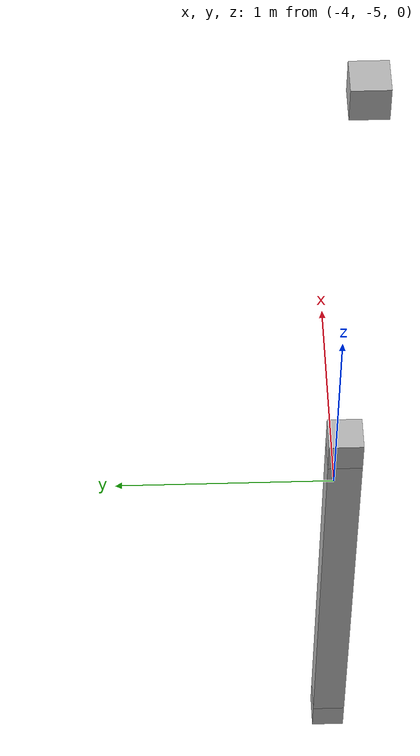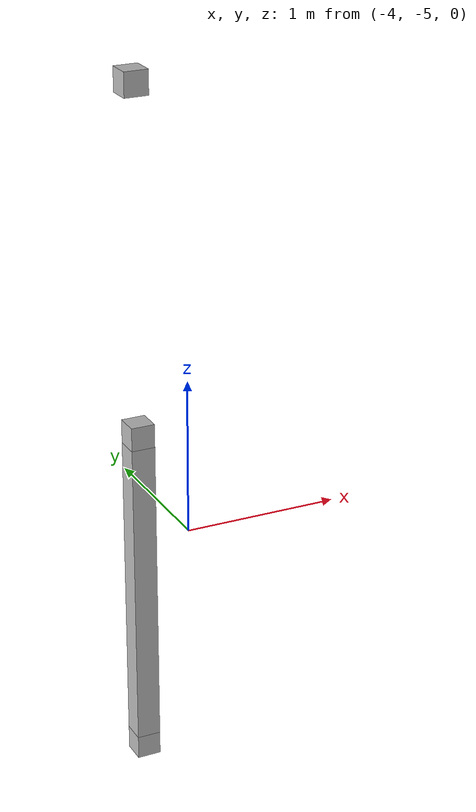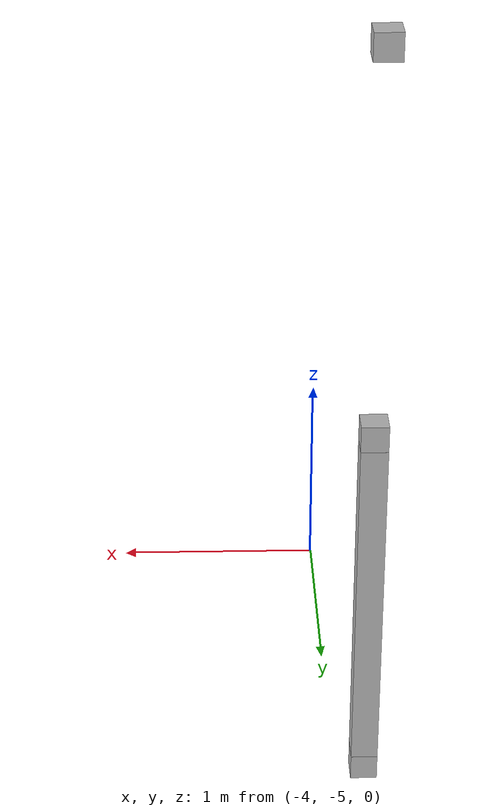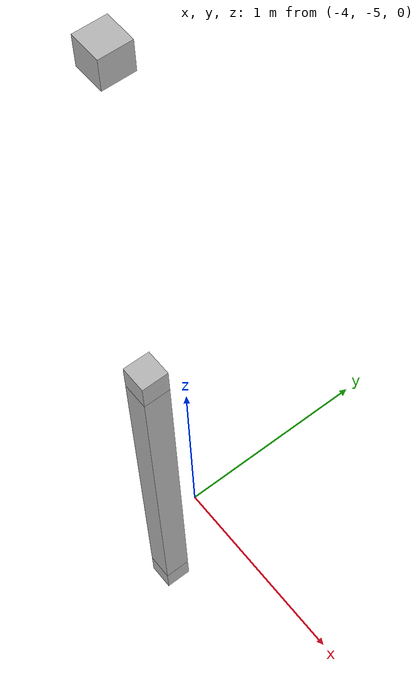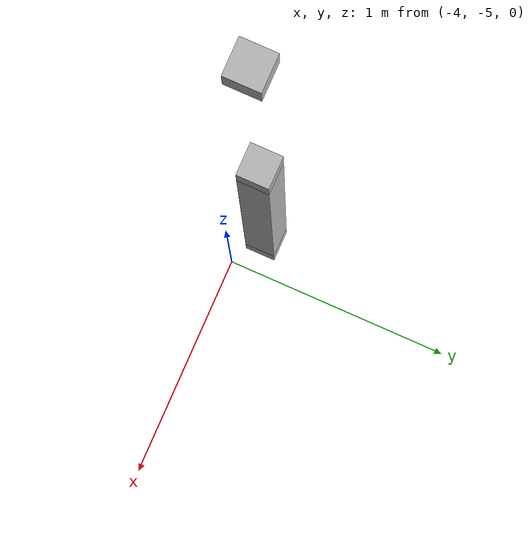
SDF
<sdf version="1.7">
 <world name="default">
  <model name="orthogonal_747_2.000.15_TS">
   <static>1</static>
   <link name="u_link_0_0_1">
    <inertial>
     <mass>1</mass>
     <inertia>
      <ixx>0.166667</ixx>
      <ixy>0</ixy>
      <ixz>0</ixz>
      <iyy>0.166667</iyy>
      <iyz>0</iyz>
      <izz>0.166667</izz>
     </inertia>
    </inertial>
    <pose>2.15 0 1.075 0 -0 0</pose>
    <visual name="visual_0">
     <laser_retro>36</laser_retro>
     <geometry><box><size>0.15 1e-06 0.15</size></box></geometry>
     <material>
      <script><name>Gazebo/Grey</name><uri>file://media/materials/scripts/gazebo.material</uri></script>
      <shader type="pixel"><normal_map>__default__</normal_map></shader>
      <ambient>0.678 0.498 0.659 1</ambient>
      <diffuse>0.7 0.7 0.7 1</diffuse>
      <specular>0.01 0.01 0.01 1</specular>
      <emissive>0 0 0 1</emissive>
     </material>
     <pose>0 -0.075 0 0 -0 0</pose>
     <transparency>1</transparency>
    </visual>
    <visual name="visual_1">
     <laser_retro>37</laser_retro>
     <geometry><box><size>0.15 1e-06 0.15</size></box></geometry>
     <material>
      <script><name>Gazebo/Grey</name><uri>file://media/materials/scripts/gazebo.material</uri></script>
      <shader type="pixel"><normal_map>__default__</normal_map></shader>
      <ambient>0.447 0.624 0.812 1</ambient>
      <diffuse>0.7 0.7 0.7 1</diffuse>
      <specular>0.01 0.01 0.01 1</specular>
      <emissive>0 0 0 1</emissive>
     </material>
     <pose>0 0.075 0 0 -0 0</pose>
     <transparency>1</transparency>
    </visual>
    <visual name="visual_2">
     <laser_retro>38</laser_retro>
     <geometry><box><size>0.15 0.15 1e-06</size></box></geometry>
     <material>
      <script><name>Gazebo/Grey</name><uri>file://media/materials/scripts/gazebo.material</uri></script>
      <shader type="pixel"><normal_map>__default__</normal_map></shader>
      <ambient>0.988 0.686 0.243 1</ambient>
      <diffuse>0.7 0.7 0.7 1</diffuse>
      <specular>0.01 0.01 0.01 1</specular>
      <emissive>0 0 0 1</emissive>
     </material>
     <pose>0 0 -0.075 0 -0 0</pose>
     <transparency>1</transparency>
    </visual>
    <visual name="visual_3">
     <laser_retro>39</laser_retro>
     <geometry><box><size>1e-06 0.15 0.15</size></box></geometry>
     <material>
      <script><name>Gazebo/Grey</name><uri>file://media/materials/scripts/gazebo.material</uri></script>
      <shader type="pixel"><normal_map>__default__</normal_map></shader>
      <ambient>0.988 0.914 0.31 1</ambient>
      <diffuse>0.7 0.7 0.7 1</diffuse>
      <specular>0.01 0.01 0.01 1</specular>
      <emissive>0 0 0 1</emissive>
     </material>
     <pose>0.075 0 0 0 -0 0</pose>
     <transparency>1</transparency>
    </visual>
    <visual name="visual_4">
     <laser_retro>40</laser_retro>
     <geometry><box><size>0.15 0.15 1e-06</size></box></geometry>
     <material>
      <script><name>Gazebo/Grey</name><uri>file://media/materials/scripts/gazebo.material</uri></script>
      <shader type="pixel"><normal_map>__default__</normal_map></shader>
      <ambient>0.937 0.161 0.161 1</ambient>
      <diffuse>0.7 0.7 0.7 1</diffuse>
      <specular>0.01 0.01 0.01 1</specular>
      <emissive>0 0 0 1</emissive>
     </material>
     <pose>0 0 0.075 0 -0 0</pose>
     <transparency>1</transparency>
    </visual>
    <visual name="visual_5">
     <laser_retro>41</laser_retro>
     <geometry><box><size>1e-06 0.15 0.15</size></box></geometry>
     <material>
      <script><name>Gazebo/Grey</name><uri>file://media/materials/scripts/gazebo.material</uri></script>
      <shader type="pixel"><normal_map>__default__</normal_map></shader>
      <ambient>0.541 0.886 0.204 1</ambient>
      <diffuse>0.7 0.7 0.7 1</diffuse>
      <specular>0.01 0.01 0.01 1</specular>
      <emissive>0 0 0 1</emissive>
     </material>
     <pose>-0.075 0 0 0 -0 0</pose>
     <transparency>1</transparency>
    </visual>
    <visual name="visual_texture">
     <geometry><box><size>0.149985 0.149985 0.149985</size></box></geometry>
     <material>
      <script>
       <uri>model://BASE_MODELS/simple_block_v2_textured/materials/scripts</uri>
       <uri>model://BASE_MODELS/simple_block_v2_textured/materials/textures</uri>
       <name>metal</name>
      </script>
     </material>
     <laser_retro>42</laser_retro>
    </visual>
    <collision name="collision">
     <geometry><box><size>0.15 0.15 0.15</size></box></geometry>
     <surface>
      <friction>
       <ode><mu>1</mu><mu2>1</mu2><fdir1>0 0 0</fdir1><slip1>0</slip1><slip2>0</slip2></ode>
       <torsional>
        <coefficient>1</coefficient>
        <patch_radius>0</patch_radius>
        <surface_radius>0</surface_radius>
        <use_patch_radius>1</use_patch_radius>
        <ode><slip>0</slip></ode>
       </torsional>
      </friction>
      <bounce><restitution_coefficient>0</restitution_coefficient><threshold>1e+06</threshold></bounce>
      <contact>
       <collide_without_contact>0</collide_without_contact>
       <collide_without_contact_bitmask>1</collide_without_contact_bitmask>
       <collide_bitmask>1</collide_bitmask>
       <ode>
        <soft_cfm>0</soft_cfm>
        <soft_erp>0.2</soft_erp>
        <kp>1e+13</kp>
        <kd>1</kd>
        <max_vel>0.01</max_vel>
        <min_depth>0</min_depth>
       </ode>
       <bullet>
        <split_impulse>1</split_impulse>
        <split_impulse_penetration_threshold>-0.01</split_impulse_penetration_threshold>
        <soft_cfm>0</soft_cfm>
        <soft_erp>0.2</soft_erp>
        <kp>1e+13</kp>
        <kd>1</kd>
       </bullet>
      </contact>
     </surface>
    </collision>
   </link>
   <link name="u_link_1_0_1">
    <inertial>
     <mass>1</mass>
     <inertia>
      <ixx>0.166667</ixx>
      <ixy>0</ixy>
      <ixz>0</ixz>
      <iyy>0.166667</iyy>
      <iyz>0</iyz>
      <izz>0.166667</izz>
     </inertia>
    </inertial>
    <pose>2.15 0 3.225 0 -0 0</pose>
    <visual name="visual_0">
     <laser_retro>792</laser_retro>
     <geometry><box><size>0.15 1e-06 0.15</size></box></geometry>
     <material>
      <script><name>Gazebo/Grey</name><uri>file://media/materials/scripts/gazebo.material</uri></script>
      <shader type="pixel"><normal_map>__default__</normal_map></shader>
      <ambient>0.678 0.498 0.659 1</ambient>
      <diffuse>0.7 0.7 0.7 1</diffuse>
      <specular>0.01 0.01 0.01 1</specular>
      <emissive>0 0 0 1</emissive>
     </material>
     <pose>0 -0.075 0 0 -0 0</pose>
     <transparency>1</transparency>
    </visual>
    <visual name="visual_1">
     <laser_retro>793</laser_retro>
     <geometry><box><size>0.15 1e-06 0.15</size></box></geometry>
     <material>
      <script><name>Gazebo/Grey</name><uri>file://media/materials/scripts/gazebo.material</uri></script>
      <shader type="pixel"><normal_map>__default__</normal_map></shader>
      <ambient>0.447 0.624 0.812 1</ambient>
      <diffuse>0.7 0.7 0.7 1</diffuse>
      <specular>0.01 0.01 0.01 1</specular>
      <emissive>0 0 0 1</emissive>
     </material>
     <pose>0 0.075 0 0 -0 0</pose>
     <transparency>1</transparency>
    </visual>
    <visual name="visual_2">
     <laser_retro>794</laser_retro>
     <geometry><box><size>0.15 0.15 1e-06</size></box></geometry>
     <material>
      <script><name>Gazebo/Grey</name><uri>file://media/materials/scripts/gazebo.material</uri></script>
      <shader type="pixel"><normal_map>__default__</normal_map></shader>
      <ambient>0.988 0.686 0.243 1</ambient>
      <diffuse>0.7 0.7 0.7 1</diffuse>
      <specular>0.01 0.01 0.01 1</specular>
      <emissive>0 0 0 1</emissive>
     </material>
     <pose>0 0 -0.075 0 -0 0</pose>
     <transparency>1</transparency>
    </visual>
    <visual name="visual_3">
     <laser_retro>795</laser_retro>
     <geometry><box><size>1e-06 0.15 0.15</size></box></geometry>
     <material>
      <script><name>Gazebo/Grey</name><uri>file://media/materials/scripts/gazebo.material</uri></script>
      <shader type="pixel"><normal_map>__default__</normal_map></shader>
      <ambient>0.988 0.914 0.31 1</ambient>
      <diffuse>0.7 0.7 0.7 1</diffuse>
      <specular>0.01 0.01 0.01 1</specular>
      <emissive>0 0 0 1</emissive>
     </material>
     <pose>0.075 0 0 0 -0 0</pose>
     <transparency>1</transparency>
    </visual>
    <visual name="visual_4">
     <laser_retro>796</laser_retro>
     <geometry><box><size>0.15 0.15 1e-06</size></box></geometry>
     <material>
      <script><name>Gazebo/Grey</name><uri>file://media/materials/scripts/gazebo.material</uri></script>
      <shader type="pixel"><normal_map>__default__</normal_map></shader>
      <ambient>0.937 0.161 0.161 1</ambient>
      <diffuse>0.7 0.7 0.7 1</diffuse>
      <specular>0.01 0.01 0.01 1</specular>
      <emissive>0 0 0 1</emissive>
     </material>
     <pose>0 0 0.075 0 -0 0</pose>
     <transparency>1</transparency>
    </visual>
    <visual name="visual_5">
     <laser_retro>797</laser_retro>
     <geometry><box><size>1e-06 0.15 0.15</size></box></geometry>
     <material>
      <script><name>Gazebo/Grey</name><uri>file://media/materials/scripts/gazebo.material</uri></script>
      <shader type="pixel"><normal_map>__default__</normal_map></shader>
      <ambient>0.541 0.886 0.204 1</ambient>
      <diffuse>0.7 0.7 0.7 1</diffuse>
      <specular>0.01 0.01 0.01 1</specular>
      <emissive>0 0 0 1</emissive>
     </material>
     <pose>-0.075 0 0 0 -0 0</pose>
     <transparency>1</transparency>
    </visual>
    <visual name="visual_texture">
     <geometry><box><size>0.149985 0.149985 0.149985</size></box></geometry>
     <material>
      <script>
       <uri>model://BASE_MODELS/simple_block_v2_textured/materials/scripts</uri>
       <uri>model://BASE_MODELS/simple_block_v2_textured/materials/textures</uri>
       <name>metal</name>
      </script>
     </material>
     <laser_retro>798</laser_retro>
    </visual>
    <collision name="collision">
     <geometry><box><size>0.15 0.15 0.15</size></box></geometry>
     <surface>
      <friction>
       <ode><mu>1</mu><mu2>1</mu2><fdir1>0 0 0</fdir1><slip1>0</slip1><slip2>0</slip2></ode>
       <torsional>
        <coefficient>1</coefficient>
        <patch_radius>0</patch_radius>
        <surface_radius>0</surface_radius>
        <use_patch_radius>1</use_patch_radius>
        <ode><slip>0</slip></ode>
       </torsional>
      </friction>
      <bounce><restitution_coefficient>0</restitution_coefficient><threshold>1e+06</threshold></bounce>
      <contact>
       <collide_without_contact>0</collide_without_contact>
       <collide_without_contact_bitmask>1</collide_without_contact_bitmask>
       <collide_bitmask>1</collide_bitmask>
       <ode>
        <soft_cfm>0</soft_cfm>
        <soft_erp>0.2</soft_erp>
        <kp>1e+13</kp>
        <kd>1</kd>
        <max_vel>0.01</max_vel>
        <min_depth>0</min_depth>
       </ode>
       <bullet>
        <split_impulse>1</split_impulse>
        <split_impulse_penetration_threshold>-0.01</split_impulse_penetration_threshold>
        <soft_cfm>0</soft_cfm>
        <soft_erp>0.2</soft_erp>
        <kp>1e+13</kp>
        <kd>1</kd>
       </bullet>
      </contact>
     </surface>
    </collision>
   </link>
   <link name="z_link_1_0_1">
    <inertial>
     <mass>1</mass>
     <inertia>
      <ixx>0.166667</ixx>
      <ixy>0</ixy>
      <ixz>0</ixz>
      <iyy>0.166667</iyy>
      <iyz>0</iyz>
      <izz>0.166667</izz>
     </inertia>
    </inertial>
    <pose>2.15 0 2.15 0 -0 0</pose>
    <visual name="visual_0">
     <laser_retro>799</laser_retro>
     <geometry><box><size>0.15 1e-06 2</size></box></geometry>
     <material>
      <script><name>Gazebo/Grey</name><uri>file://media/materials/scripts/gazebo.material</uri></script>
      <shader type="pixel"><normal_map>__default__</normal_map></shader>
      <ambient>0.678 0.498 0.659 1</ambient>
      <diffuse>0.7 0.7 0.7 1</diffuse>
      <specular>0.01 0.01 0.01 1</specular>
      <emissive>0 0 0 1</emissive>
     </material>
     <pose>0 -0.075 0 0 -0 0</pose>
     <transparency>1</transparency>
    </visual>
    <visual name="visual_1">
     <laser_retro>800</laser_retro>
     <geometry><box><size>0.15 1e-06 2</size></box></geometry>
     <material>
      <script><name>Gazebo/Grey</name><uri>file://media/materials/scripts/gazebo.material</uri></script>
      <shader type="pixel"><normal_map>__default__</normal_map></shader>
      <ambient>0.447 0.624 0.812 1</ambient>
      <diffuse>0.7 0.7 0.7 1</diffuse>
      <specular>0.01 0.01 0.01 1</specular>
      <emissive>0 0 0 1</emissive>
     </material>
     <pose>0 0.075 0 0 -0 0</pose>
     <transparency>1</transparency>
    </visual>
    <visual name="visual_2">
     <laser_retro>801</laser_retro>
     <geometry><box><size>0.15 0.15 1e-06</size></box></geometry>
     <material>
      <script><name>Gazebo/Grey</name><uri>file://media/materials/scripts/gazebo.material</uri></script>
      <shader type="pixel"><normal_map>__default__</normal_map></shader>
      <ambient>0.988 0.686 0.243 1</ambient>
      <diffuse>0.7 0.7 0.7 1</diffuse>
      <specular>0.01 0.01 0.01 1</specular>
      <emissive>0 0 0 1</emissive>
     </material>
     <pose>0 0 -1 0 -0 0</pose>
     <transparency>1</transparency>
    </visual>
    <visual name="visual_3">
     <laser_retro>802</laser_retro>
     <geometry><box><size>1e-06 0.15 2</size></box></geometry>
     <material>
      <script><name>Gazebo/Grey</name><uri>file://media/materials/scripts/gazebo.material</uri></script>
      <shader type="pixel"><normal_map>__default__</normal_map></shader>
      <ambient>0.988 0.914 0.31 1</ambient>
      <diffuse>0.7 0.7 0.7 1</diffuse>
      <specular>0.01 0.01 0.01 1</specular>
      <emissive>0 0 0 1</emissive>
     </material>
     <pose>0.075 0 0 0 -0 0</pose>
     <transparency>1</transparency>
    </visual>
    <visual name="visual_4">
     <laser_retro>803</laser_retro>
     <geometry><box><size>0.15 0.15 1e-06</size></box></geometry>
     <material>
      <script><name>Gazebo/Grey</name><uri>file://media/materials/scripts/gazebo.material</uri></script>
      <shader type="pixel"><normal_map>__default__</normal_map></shader>
      <ambient>0.937 0.161 0.161 1</ambient>
      <diffuse>0.7 0.7 0.7 1</diffuse>
      <specular>0.01 0.01 0.01 1</specular>
      <emissive>0 0 0 1</emissive>
     </material>
     <pose>0 0 1 0 -0 0</pose>
     <transparency>1</transparency>
    </visual>
    <visual name="visual_5">
     <laser_retro>804</laser_retro>
     <geometry><box><size>1e-06 0.15 2</size></box></geometry>
     <material>
      <script><name>Gazebo/Grey</name><uri>file://media/materials/scripts/gazebo.material</uri></script>
      <shader type="pixel"><normal_map>__default__</normal_map></shader>
      <ambient>0.541 0.886 0.204 1</ambient>
      <diffuse>0.7 0.7 0.7 1</diffuse>
      <specular>0.01 0.01 0.01 1</specular>
      <emissive>0 0 0 1</emissive>
     </material>
     <pose>-0.075 0 0 0 -0 0</pose>
     <transparency>1</transparency>
    </visual>
    <visual name="visual_texture">
     <geometry><box><size>0.149985 0.149985 1.9998</size></box></geometry>
     <material>
      <script>
       <uri>model://BASE_MODELS/simple_block_v2_textured/materials/scripts</uri>
       <uri>model://BASE_MODELS/simple_block_v2_textured/materials/textures</uri>
       <name>metal</name>
      </script>
     </material>
     <laser_retro>805</laser_retro>
    </visual>
    <collision name="collision">
     <geometry><box><size>0.15 0.15 2</size></box></geometry>
     <surface>
      <friction>
       <ode><mu>1</mu><mu2>1</mu2><fdir1>0 0 0</fdir1><slip1>0</slip1><slip2>0</slip2></ode>
       <torsional>
        <coefficient>1</coefficient>
        <patch_radius>0</patch_radius>
        <surface_radius>0</surface_radius>
        <use_patch_radius>1</use_patch_radius>
        <ode><slip>0</slip></ode>
       </torsional>
      </friction>
      <bounce><restitution_coefficient>0</restitution_coefficient><threshold>1e+06</threshold></bounce>
      <contact>
       <collide_without_contact>0</collide_without_contact>
       <collide_without_contact_bitmask>1</collide_without_contact_bitmask>
       <collide_bitmask>1</collide_bitmask>
       <ode>
        <soft_cfm>0</soft_cfm>
        <soft_erp>0.2</soft_erp>
        <kp>1e+13</kp>
        <kd>1</kd>
        <max_vel>0.01</max_vel>
        <min_depth>0</min_depth>
       </ode>
       <bullet>
        <split_impulse>1</split_impulse>
        <split_impulse_penetration_threshold>-0.01</split_impulse_penetration_threshold>
        <soft_cfm>0</soft_cfm>
        <soft_erp>0.2</soft_erp>
        <kp>1e+13</kp>
        <kd>1</kd>
       </bullet>
      </contact>
     </surface>
    </collision>
   </link>
   <link name="u_link_2_0_1">
    <inertial>
     <mass>1</mass>
     <inertia>
      <ixx>0.166667</ixx>
      <ixy>0</ixy>
      <ixz>0</ixz>
      <iyy>0.166667</iyy>
      <iyz>0</iyz>
      <izz>0.166667</izz>
     </inertia>
    </inertial>
    <pose>2.15 0 5.375 0 -0 0</pose>
    <visual name="visual_0">
     <laser_retro>1695</laser_retro>
     <geometry><box><size>0.15 1e-06 0.15</size></box></geometry>
     <material>
      <script><name>Gazebo/Grey</name><uri>file://media/materials/scripts/gazebo.material</uri></script>
      <shader type="pixel"><normal_map>__default__</normal_map></shader>
      <ambient>0.678 0.498 0.659 1</ambient>
      <diffuse>0.7 0.7 0.7 1</diffuse>
      <specular>0.01 0.01 0.01 1</specular>
      <emissive>0 0 0 1</emissive>
     </material>
     <pose>0 -0.075 0 0 -0 0</pose>
     <transparency>1</transparency>
    </visual>
    <visual name="visual_1">
     <laser_retro>1696</laser_retro>
     <geometry><box><size>0.15 1e-06 0.15</size></box></geometry>
     <material>
      <script><name>Gazebo/Grey</name><uri>file://media/materials/scripts/gazebo.material</uri></script>
      <shader type="pixel"><normal_map>__default__</normal_map></shader>
      <ambient>0.447 0.624 0.812 1</ambient>
      <diffuse>0.7 0.7 0.7 1</diffuse>
      <specular>0.01 0.01 0.01 1</specular>
      <emissive>0 0 0 1</emissive>
     </material>
     <pose>0 0.075 0 0 -0 0</pose>
     <transparency>1</transparency>
    </visual>
    <visual name="visual_2">
     <laser_retro>1697</laser_retro>
     <geometry><box><size>0.15 0.15 1e-06</size></box></geometry>
     <material>
      <script><name>Gazebo/Grey</name><uri>file://media/materials/scripts/gazebo.material</uri></script>
      <shader type="pixel"><normal_map>__default__</normal_map></shader>
      <ambient>0.988 0.686 0.243 1</ambient>
      <diffuse>0.7 0.7 0.7 1</diffuse>
      <specular>0.01 0.01 0.01 1</specular>
      <emissive>0 0 0 1</emissive>
     </material>
     <pose>0 0 -0.075 0 -0 0</pose>
     <transparency>1</transparency>
    </visual>
    <visual name="visual_3">
     <laser_retro>1698</laser_retro>
     <geometry><box><size>1e-06 0.15 0.15</size></box></geometry>
     <material>
      <script><name>Gazebo/Grey</name><uri>file://media/materials/scripts/gazebo.material</uri></script>
      <shader type="pixel"><normal_map>__default__</normal_map></shader>
      <ambient>0.988 0.914 0.31 1</ambient>
      <diffuse>0.7 0.7 0.7 1</diffuse>
      <specular>0.01 0.01 0.01 1</specular>
      <emissive>0 0 0 1</emissive>
     </material>
     <pose>0.075 0 0 0 -0 0</pose>
     <transparency>1</transparency>
    </visual>
    <visual name="visual_4">
     <laser_retro>1699</laser_retro>
     <geometry><box><size>0.15 0.15 1e-06</size></box></geometry>
     <material>
      <script><name>Gazebo/Grey</name><uri>file://media/materials/scripts/gazebo.material</uri></script>
      <shader type="pixel"><normal_map>__default__</normal_map></shader>
      <ambient>0.937 0.161 0.161 1</ambient>
      <diffuse>0.7 0.7 0.7 1</diffuse>
      <specular>0.01 0.01 0.01 1</specular>
      <emissive>0 0 0 1</emissive>
     </material>
     <pose>0 0 0.075 0 -0 0</pose>
     <transparency>1</transparency>
    </visual>
    <visual name="visual_5">
     <laser_retro>1700</laser_retro>
     <geometry><box><size>1e-06 0.15 0.15</size></box></geometry>
     <material>
      <script><name>Gazebo/Grey</name><uri>file://media/materials/scripts/gazebo.material</uri></script>
      <shader type="pixel"><normal_map>__default__</normal_map></shader>
      <ambient>0.541 0.886 0.204 1</ambient>
      <diffuse>0.7 0.7 0.7 1</diffuse>
      <specular>0.01 0.01 0.01 1</specular>
      <emissive>0 0 0 1</emissive>
     </material>
     <pose>-0.075 0 0 0 -0 0</pose>
     <transparency>1</transparency>
    </visual>
    <visual name="visual_texture">
     <geometry><box><size>0.149985 0.149985 0.149985</size></box></geometry>
     <material>
      <script>
       <uri>model://BASE_MODELS/simple_block_v2_textured/materials/scripts</uri>
       <uri>model://BASE_MODELS/simple_block_v2_textured/materials/textures</uri>
       <name>metal</name>
      </script>
     </material>
     <laser_retro>1701</laser_retro>
    </visual>
    <collision name="collision">
     <geometry><box><size>0.15 0.15 0.15</size></box></geometry>
     <surface>
      <friction>
       <ode><mu>1</mu><mu2>1</mu2><fdir1>0 0 0</fdir1><slip1>0</slip1><slip2>0</slip2></ode>
       <torsional>
        <coefficient>1</coefficient>
        <patch_radius>0</patch_radius>
        <surface_radius>0</surface_radius>
        <use_patch_radius>1</use_patch_radius>
        <ode><slip>0</slip></ode>
       </torsional>
      </friction>
      <bounce><restitution_coefficient>0</restitution_coefficient><threshold>1e+06</threshold></bounce>
      <contact>
       <collide_without_contact>0</collide_without_contact>
       <collide_without_contact_bitmask>1</collide_without_contact_bitmask>
       <collide_bitmask>1</collide_bitmask>
       <ode>
        <soft_cfm>0</soft_cfm>
        <soft_erp>0.2</soft_erp>
        <kp>1e+13</kp>
        <kd>1</kd>
        <max_vel>0.01</max_vel>
        <min_depth>0</min_depth>
       </ode>
       <bullet>
        <split_impulse>1</split_impulse>
        <split_impulse_penetration_threshold>-0.01</split_impulse_penetration_threshold>
        <soft_cfm>0</soft_cfm>
        <soft_erp>0.2</soft_erp>
        <kp>1e+13</kp>
        <kd>1</kd>
       </bullet>
      </contact>
     </surface>
    </collision>
   </link>
   <pose>-6.47624 -5 -2.5 0 -0 0</pose>
  </model>
 </world>
</sdf>
